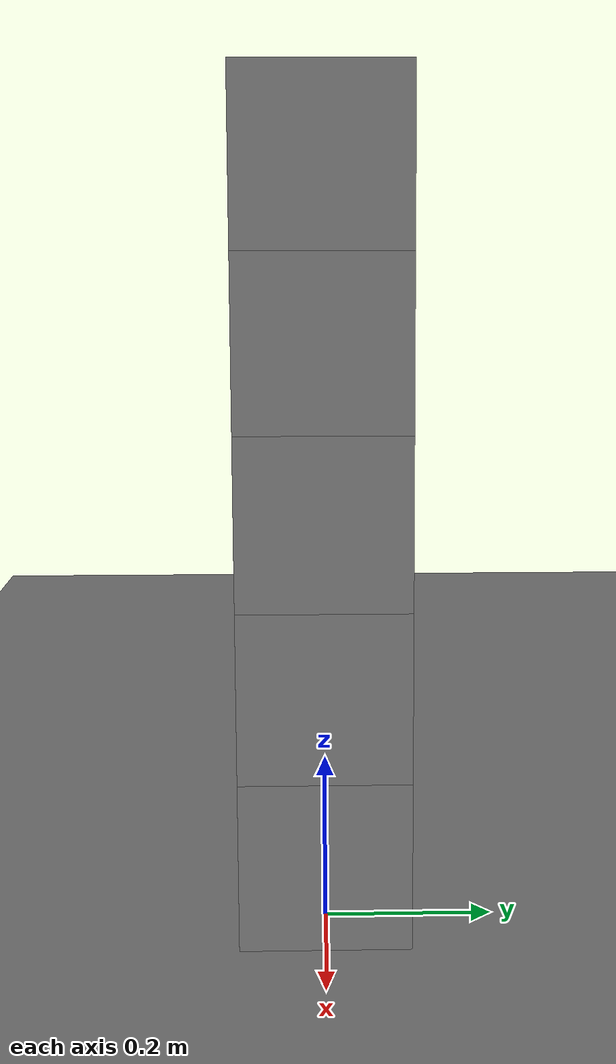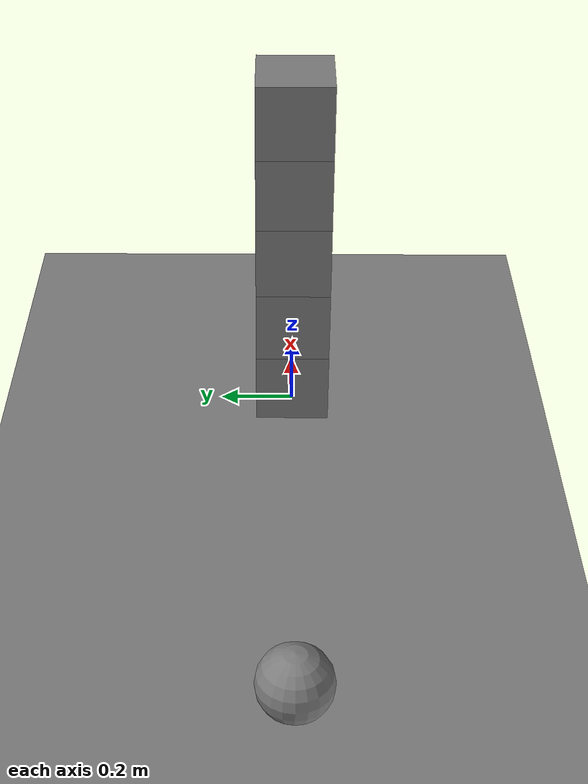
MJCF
<mujoco model="stack_fixture">
  <option timestep="0.002"/>
  <worldbody>
    <geom name="floor" type="plane" size="6 6 0.1" friction="0.6 0.005 0.0001"/>
    <body name="block1" pos="0 0 0.100">
      <freejoint/>
      <geom name="block1" type="box" size="0.1 0.1 0.1" mass="0.5" friction="0.6 0.005 0.0001"/>
    </body>
    <body name="block2" pos="0 0 0.300">
      <freejoint/>
      <geom name="block2" type="box" size="0.1 0.1 0.1" mass="0.5" friction="0.6 0.005 0.0001"/>
    </body>
    <body name="block3" pos="0 0 0.500">
      <freejoint/>
      <geom name="block3" type="box" size="0.1 0.1 0.1" mass="0.5" friction="0.6 0.005 0.0001"/>
    </body>
    <body name="block4" pos="0 0 0.700">
      <freejoint/>
      <geom name="block4" type="box" size="0.1 0.1 0.1" mass="0.5" friction="0.6 0.005 0.0001"/>
    </body>
    <body name="block5" pos="0 0 0.900">
      <freejoint/>
      <geom name="block5" type="box" size="0.1 0.1 0.1" mass="0.5" friction="0.6 0.005 0.0001"/>
    </body>
    <body name="pusher" pos="-1.2 0 0.1">
      <joint name="pusher_slide" type="slide" axis="1 0 0"/>
      <geom name="pusher" type="sphere" size="0.09" mass="4.0" friction="0.3 0.005 0.0001"/>
    </body>
  </worldbody>
  <actuator>
    <velocity name="push" joint="pusher_slide" kv="200"/>
  </actuator>
  <keyframe>
    <key name="start" qpos="0 0 0.100 1 0 0 0  0 0 0.300 1 0 0 0  0 0 0.500 1 0 0 0  0 0 0.700 1 0 0 0  0 0 0.900 1 0 0 0  0" qvel="0 0 0 0 0 0  0 0 0 0 0 0  0 0 0 0 0 0  0 0 0 0 0 0  0 0 0 0 0 0  2" ctrl="2"/>
  </keyframe>
</mujoco>
